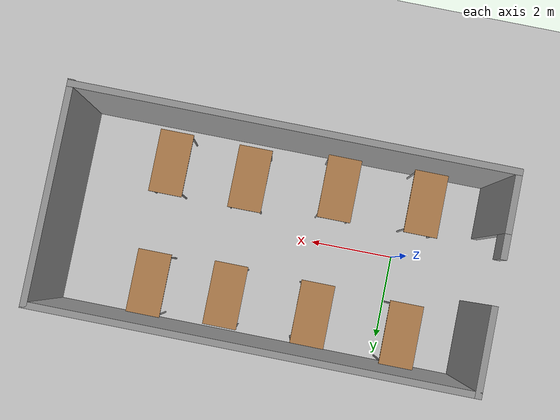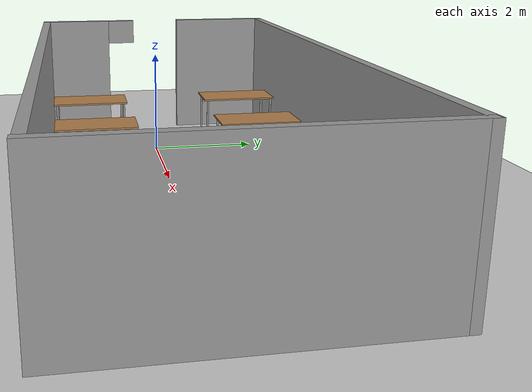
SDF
<sdf version="1.7">
 <world name="default">
  <model name="ground_plane">
   <static>1</static>
   <link name="link">
    <collision name="collision">
     <geometry><plane><normal>0 0 1</normal><size>100 100</size></plane></geometry>
     <surface>
      <contact><collide_bitmask>65535</collide_bitmask></contact>
      <friction><ode><mu>100</mu><mu2>50</mu2></ode></friction>
     </surface>
    </collision>
    <visual name="visual">
     <cast_shadows>0</cast_shadows>
     <geometry><plane><normal>0 0 1</normal><size>100 100</size></plane></geometry>
     <material>
      <script><uri>file://media/materials/scripts/gazebo.material</uri><name>Gazebo/Grey</name></script>
     </material>
    </visual>
   </link>
  </model>
  <gravity>0 0 -9.8</gravity>
  <magnetic_field>6e-06 2.3e-05 -4.2e-05</magnetic_field>
  <atmosphere type="adiabatic"/>
  <physics type="ode">
   <max_step_size>0.001</max_step_size>
   <real_time_factor>1</real_time_factor>
   <real_time_update_rate>1000</real_time_update_rate>
  </physics>
  <scene><ambient>0.4 0.4 0.4 1</ambient><background>0.7 0.7 0.7 1</background><shadows>1</shadows></scene>
  <audio><device>default</device></audio>
  <spherical_coordinates>
   <surface_model>EARTH_WGS84</surface_model>
   <latitude_deg>0</latitude_deg>
   <longitude_deg>0</longitude_deg>
   <elevation>0</elevation>
   <heading_deg>0</heading_deg>
  </spherical_coordinates>
  <light name="sun" type="directional">
   <pose>0.634705 -1.55761 10 0 -0 0</pose>
   <diffuse>0.8 0.8 0.8 1</diffuse>
   <specular>0.2 0.2 0.2 1</specular>
   <attenuation>
    <range>1000</range>
    <constant>0.9</constant>
    <linear>0.01</linear>
    <quadratic>0.001</quadratic>
   </attenuation>
   <direction>-0.5 0.1 -0.9</direction>
   <spot><inner_angle>0</inner_angle><outer_angle>0</outer_angle><falloff>0</falloff></spot>
  </light>
  <model name="vxl">
   <pose>2.9667 0.202921 0 0 -0 0</pose>
   <link name="Wall_17">
    <pose>-4.925 -1.48994 0 0 -0 1.5708</pose>
    <visual name="Wall_17_Visual_0">
     <pose>-0.280644 0 1.25 0 -0 0</pose>
     <geometry><box><size>1.43871 0.15 2.5</size></box></geometry>
     <material>
      <script><uri>file://media/materials/scripts/gazebo.material</uri><name>Gazebo/Grey</name></script>
      <ambient>1 1 1 1</ambient>
     </material>
     <meta><layer>0</layer></meta>
    </visual>
    <collision name="Wall_17_Collision_0">
     <geometry><box><size>1.43871 0.15 2.5</size></box></geometry>
     <pose>-0.280644 0 1.25 0 -0 0</pose>
    </collision>
    <visual name="Wall_17_Visual_1">
     <pose>0.719356 0 2.25 0 -0 0</pose>
     <geometry><box><size>0.561289 0.15 0.5</size></box></geometry>
     <material>
      <script><uri>file://media/materials/scripts/gazebo.material</uri><name>Gazebo/Grey</name></script>
      <ambient>1 1 1 1</ambient>
     </material>
     <meta><layer>0</layer></meta>
    </visual>
    <collision name="Wall_17_Collision_1">
     <geometry><box><size>0.561289 0.15 0.5</size></box></geometry>
     <pose>0.719356 0 2.25 0 -0 0</pose>
    </collision>
   </link>
   <link name="Wall_19">
    <collision name="Wall_19_Collision">
     <geometry><box><size>2 0.15 2.5</size></box></geometry>
     <pose>0 0 1.25 0 -0 0</pose>
    </collision>
    <visual name="Wall_19_Visual">
     <pose>0 0 1.25 0 -0 0</pose>
     <geometry><box><size>2 0.15 2.5</size></box></geometry>
     <material>
      <script><uri>file://media/materials/scripts/gazebo.material</uri><name>Gazebo/Grey</name></script>
      <ambient>1 1 1 1</ambient>
     </material>
     <meta><layer>0</layer></meta>
    </visual>
    <pose>-4.925 1.51006 0 0 -0 -1.5708</pose>
   </link>
   <link name="Wall_6">
    <collision name="Wall_6_Collision">
     <geometry><box><size>10 0.15 2.5</size></box></geometry>
     <pose>0 0 1.25 0 -0 0</pose>
    </collision>
    <visual name="Wall_6_Visual">
     <pose>0 0 1.25 0 -0 0</pose>
     <geometry><box><size>10 0.15 2.5</size></box></geometry>
     <material>
      <script><uri>file://media/materials/scripts/gazebo.material</uri><name>Gazebo/Grey</name></script>
      <ambient>1 1 1 1</ambient>
     </material>
     <meta><layer>0</layer></meta>
    </visual>
    <pose>-0 -2.41494 0 0 -0 0</pose>
   </link>
   <link name="Wall_8">
    <collision name="Wall_8_Collision">
     <geometry><box><size>5 0.15 2.5</size></box></geometry>
     <pose>0 0 1.25 0 -0 0</pose>
    </collision>
    <visual name="Wall_8_Visual">
     <pose>0 0 1.25 0 -0 0</pose>
     <geometry><box><size>5 0.15 2.5</size></box></geometry>
     <material>
      <script><uri>file://media/materials/scripts/gazebo.material</uri><name>Gazebo/Grey</name></script>
      <ambient>1 1 1 1</ambient>
     </material>
     <meta><layer>0</layer></meta>
    </visual>
    <pose>4.925 -0.010057 0 0 -0 1.5708</pose>
   </link>
   <link name="Wall_9">
    <collision name="Wall_9_Collision">
     <geometry><box><size>10 0.15 2.5</size></box></geometry>
     <pose>0 0 1.25 0 -0 0</pose>
    </collision>
    <visual name="Wall_9_Visual">
     <pose>0 0 1.25 0 -0 0</pose>
     <geometry><box><size>10 0.15 2.5</size></box></geometry>
     <material>
      <script><uri>file://media/materials/scripts/gazebo.material</uri><name>Gazebo/Grey</name></script>
      <ambient>1 1 1 1</ambient>
     </material>
     <meta><layer>0</layer></meta>
    </visual>
    <pose>-0 2.43506 0 0 -0 3.14159</pose>
   </link>
   <static>1</static>
  </model>
  <model name="table">
   <static>1</static>
   <link name="link">
    <collision name="surface">
     <pose>0 0 1 0 -0 0</pose>
     <geometry><box><size>1.5 0.8 0.03</size></box></geometry>
     <surface><friction><ode><mu>0.6</mu><mu2>0.6</mu2></ode></friction></surface>
    </collision>
    <visual name="visual1">
     <pose>0 0 1 0 -0 0</pose>
     <geometry><box><size>1.5 0.8 0.03</size></box></geometry>
     <material>
      <script><uri>file://media/materials/scripts/gazebo.material</uri><name>Gazebo/Wood</name></script>
     </material>
    </visual>
    <collision name="front_left_leg">
     <pose>0.68 0.38 0.5 0 -0 0</pose>
     <geometry><cylinder><radius>0.02</radius><length>1</length></cylinder></geometry>
    </collision>
    <visual name="front_left_leg">
     <pose>0.68 0.38 0.5 0 -0 0</pose>
     <geometry><cylinder><radius>0.02</radius><length>1</length></cylinder></geometry>
     <material>
      <script><uri>file://media/materials/scripts/gazebo.material</uri><name>Gazebo/Grey</name></script>
     </material>
    </visual>
    <collision name="front_right_leg">
     <pose>0.68 -0.38 0.5 0 -0 0</pose>
     <geometry><cylinder><radius>0.02</radius><length>1</length></cylinder></geometry>
    </collision>
    <visual name="front_right_leg">
     <pose>0.68 -0.38 0.5 0 -0 0</pose>
     <geometry><cylinder><radius>0.02</radius><length>1</length></cylinder></geometry>
     <material>
      <script><uri>file://media/materials/scripts/gazebo.material</uri><name>Gazebo/Grey</name></script>
     </material>
    </visual>
    <collision name="back_right_leg">
     <pose>-0.68 -0.38 0.5 0 -0 0</pose>
     <geometry><cylinder><radius>0.02</radius><length>1</length></cylinder></geometry>
    </collision>
    <visual name="back_right_leg">
     <pose>-0.68 -0.38 0.5 0 -0 0</pose>
     <geometry><cylinder><radius>0.02</radius><length>1</length></cylinder></geometry>
     <material>
      <script><uri>file://media/materials/scripts/gazebo.material</uri><name>Gazebo/Grey</name></script>
     </material>
    </visual>
    <collision name="back_left_leg">
     <pose>-0.68 0.38 0.5 0 -0 0</pose>
     <geometry><cylinder><radius>0.02</radius><length>1</length></cylinder></geometry>
    </collision>
    <visual name="back_left_leg">
     <pose>-0.68 0.38 0.5 0 -0 0</pose>
     <geometry><cylinder><radius>0.02</radius><length>1</length></cylinder></geometry>
     <material>
      <script><uri>file://media/materials/scripts/gazebo.material</uri><name>Gazebo/Grey</name></script>
     </material>
    </visual>
   </link>
   <pose>-0.41524 1.78939 0 0 -0 1.57</pose>
  </model>
  <model name="table_clone">
   <static>1</static>
   <link name="link">
    <collision name="surface">
     <pose>0 0 1 0 -0 0</pose>
     <geometry><box><size>1.5 0.8 0.03</size></box></geometry>
     <surface><friction><ode><mu>0.6</mu><mu2>0.6</mu2></ode></friction></surface>
    </collision>
    <visual name="visual1">
     <pose>0 0 1 0 -0 0</pose>
     <geometry><box><size>1.5 0.8 0.03</size></box></geometry>
     <material>
      <script><uri>file://media/materials/scripts/gazebo.material</uri><name>Gazebo/Wood</name></script>
     </material>
    </visual>
    <collision name="front_left_leg">
     <pose>0.68 0.38 0.5 0 -0 0</pose>
     <geometry><cylinder><radius>0.02</radius><length>1</length></cylinder></geometry>
    </collision>
    <visual name="front_left_leg">
     <pose>0.68 0.38 0.5 0 -0 0</pose>
     <geometry><cylinder><radius>0.02</radius><length>1</length></cylinder></geometry>
     <material>
      <script><uri>file://media/materials/scripts/gazebo.material</uri><name>Gazebo/Grey</name></script>
     </material>
    </visual>
    <collision name="front_right_leg">
     <pose>0.68 -0.38 0.5 0 -0 0</pose>
     <geometry><cylinder><radius>0.02</radius><length>1</length></cylinder></geometry>
    </collision>
    <visual name="front_right_leg">
     <pose>0.68 -0.38 0.5 0 -0 0</pose>
     <geometry><cylinder><radius>0.02</radius><length>1</length></cylinder></geometry>
     <material>
      <script><uri>file://media/materials/scripts/gazebo.material</uri><name>Gazebo/Grey</name></script>
     </material>
    </visual>
    <collision name="back_right_leg">
     <pose>-0.68 -0.38 0.5 0 -0 0</pose>
     <geometry><cylinder><radius>0.02</radius><length>1</length></cylinder></geometry>
    </collision>
    <visual name="back_right_leg">
     <pose>-0.68 -0.38 0.5 0 -0 0</pose>
     <geometry><cylinder><radius>0.02</radius><length>1</length></cylinder></geometry>
     <material>
      <script><uri>file://media/materials/scripts/gazebo.material</uri><name>Gazebo/Grey</name></script>
     </material>
    </visual>
    <collision name="back_left_leg">
     <pose>-0.68 0.38 0.5 0 -0 0</pose>
     <geometry><cylinder><radius>0.02</radius><length>1</length></cylinder></geometry>
    </collision>
    <visual name="back_left_leg">
     <pose>-0.68 0.38 0.5 0 -0 0</pose>
     <geometry><cylinder><radius>0.02</radius><length>1</length></cylinder></geometry>
     <material>
      <script><uri>file://media/materials/scripts/gazebo.material</uri><name>Gazebo/Grey</name></script>
     </material>
    </visual>
   </link>
   <pose>-0.416608 -1.3492 0 0 -0 1.57</pose>
  </model>
  <model name="table_clone_0">
   <static>1</static>
   <link name="link">
    <collision name="surface">
     <pose>0 0 1 0 -0 0</pose>
     <geometry><box><size>1.5 0.8 0.03</size></box></geometry>
     <surface><friction><ode><mu>0.6</mu><mu2>0.6</mu2></ode></friction></surface>
    </collision>
    <visual name="visual1">
     <pose>0 0 1 0 -0 0</pose>
     <geometry><box><size>1.5 0.8 0.03</size></box></geometry>
     <material>
      <script><uri>file://media/materials/scripts/gazebo.material</uri><name>Gazebo/Wood</name></script>
     </material>
    </visual>
    <collision name="front_left_leg">
     <pose>0.68 0.38 0.5 0 -0 0</pose>
     <geometry><cylinder><radius>0.02</radius><length>1</length></cylinder></geometry>
    </collision>
    <visual name="front_left_leg">
     <pose>0.68 0.38 0.5 0 -0 0</pose>
     <geometry><cylinder><radius>0.02</radius><length>1</length></cylinder></geometry>
     <material>
      <script><uri>file://media/materials/scripts/gazebo.material</uri><name>Gazebo/Grey</name></script>
     </material>
    </visual>
    <collision name="front_right_leg">
     <pose>0.68 -0.38 0.5 0 -0 0</pose>
     <geometry><cylinder><radius>0.02</radius><length>1</length></cylinder></geometry>
    </collision>
    <visual name="front_right_leg">
     <pose>0.68 -0.38 0.5 0 -0 0</pose>
     <geometry><cylinder><radius>0.02</radius><length>1</length></cylinder></geometry>
     <material>
      <script><uri>file://media/materials/scripts/gazebo.material</uri><name>Gazebo/Grey</name></script>
     </material>
    </visual>
    <collision name="back_right_leg">
     <pose>-0.68 -0.38 0.5 0 -0 0</pose>
     <geometry><cylinder><radius>0.02</radius><length>1</length></cylinder></geometry>
    </collision>
    <visual name="back_right_leg">
     <pose>-0.68 -0.38 0.5 0 -0 0</pose>
     <geometry><cylinder><radius>0.02</radius><length>1</length></cylinder></geometry>
     <material>
      <script><uri>file://media/materials/scripts/gazebo.material</uri><name>Gazebo/Grey</name></script>
     </material>
    </visual>
    <collision name="back_left_leg">
     <pose>-0.68 0.38 0.5 0 -0 0</pose>
     <geometry><cylinder><radius>0.02</radius><length>1</length></cylinder></geometry>
    </collision>
    <visual name="back_left_leg">
     <pose>-0.68 0.38 0.5 0 -0 0</pose>
     <geometry><cylinder><radius>0.02</radius><length>1</length></cylinder></geometry>
     <material>
      <script><uri>file://media/materials/scripts/gazebo.material</uri><name>Gazebo/Grey</name></script>
     </material>
    </visual>
   </link>
   <pose>1.71404 1.71954 0 0 -0 1.57</pose>
  </model>
  <model name="table_clone_1">
   <static>1</static>
   <link name="link">
    <collision name="surface">
     <pose>0 0 1 0 -0 0</pose>
     <geometry><box><size>1.5 0.8 0.03</size></box></geometry>
     <surface><friction><ode><mu>0.6</mu><mu2>0.6</mu2></ode></friction></surface>
    </collision>
    <visual name="visual1">
     <pose>0 0 1 0 -0 0</pose>
     <geometry><box><size>1.5 0.8 0.03</size></box></geometry>
     <material>
      <script><uri>file://media/materials/scripts/gazebo.material</uri><name>Gazebo/Wood</name></script>
     </material>
    </visual>
    <collision name="front_left_leg">
     <pose>0.68 0.38 0.5 0 -0 0</pose>
     <geometry><cylinder><radius>0.02</radius><length>1</length></cylinder></geometry>
    </collision>
    <visual name="front_left_leg">
     <pose>0.68 0.38 0.5 0 -0 0</pose>
     <geometry><cylinder><radius>0.02</radius><length>1</length></cylinder></geometry>
     <material>
      <script><uri>file://media/materials/scripts/gazebo.material</uri><name>Gazebo/Grey</name></script>
     </material>
    </visual>
    <collision name="front_right_leg">
     <pose>0.68 -0.38 0.5 0 -0 0</pose>
     <geometry><cylinder><radius>0.02</radius><length>1</length></cylinder></geometry>
    </collision>
    <visual name="front_right_leg">
     <pose>0.68 -0.38 0.5 0 -0 0</pose>
     <geometry><cylinder><radius>0.02</radius><length>1</length></cylinder></geometry>
     <material>
      <script><uri>file://media/materials/scripts/gazebo.material</uri><name>Gazebo/Grey</name></script>
     </material>
    </visual>
    <collision name="back_right_leg">
     <pose>-0.68 -0.38 0.5 0 -0 0</pose>
     <geometry><cylinder><radius>0.02</radius><length>1</length></cylinder></geometry>
    </collision>
    <visual name="back_right_leg">
     <pose>-0.68 -0.38 0.5 0 -0 0</pose>
     <geometry><cylinder><radius>0.02</radius><length>1</length></cylinder></geometry>
     <material>
      <script><uri>file://media/materials/scripts/gazebo.material</uri><name>Gazebo/Grey</name></script>
     </material>
    </visual>
    <collision name="back_left_leg">
     <pose>-0.68 0.38 0.5 0 -0 0</pose>
     <geometry><cylinder><radius>0.02</radius><length>1</length></cylinder></geometry>
    </collision>
    <visual name="back_left_leg">
     <pose>-0.68 0.38 0.5 0 -0 0</pose>
     <geometry><cylinder><radius>0.02</radius><length>1</length></cylinder></geometry>
     <material>
      <script><uri>file://media/materials/scripts/gazebo.material</uri><name>Gazebo/Grey</name></script>
     </material>
    </visual>
   </link>
   <pose>1.65299 -1.30321 0 0 -0 1.57</pose>
  </model>
  <model name="table_clone_2">
   <static>1</static>
   <link name="link">
    <collision name="surface">
     <pose>0 0 1 0 -0 0</pose>
     <geometry><box><size>1.5 0.8 0.03</size></box></geometry>
     <surface><friction><ode><mu>0.6</mu><mu2>0.6</mu2></ode></friction></surface>
    </collision>
    <visual name="visual1">
     <pose>0 0 1 0 -0 0</pose>
     <geometry><box><size>1.5 0.8 0.03</size></box></geometry>
     <material>
      <script><uri>file://media/materials/scripts/gazebo.material</uri><name>Gazebo/Wood</name></script>
     </material>
    </visual>
    <collision name="front_left_leg">
     <pose>0.68 0.38 0.5 0 -0 0</pose>
     <geometry><cylinder><radius>0.02</radius><length>1</length></cylinder></geometry>
    </collision>
    <visual name="front_left_leg">
     <pose>0.68 0.38 0.5 0 -0 0</pose>
     <geometry><cylinder><radius>0.02</radius><length>1</length></cylinder></geometry>
     <material>
      <script><uri>file://media/materials/scripts/gazebo.material</uri><name>Gazebo/Grey</name></script>
     </material>
    </visual>
    <collision name="front_right_leg">
     <pose>0.68 -0.38 0.5 0 -0 0</pose>
     <geometry><cylinder><radius>0.02</radius><length>1</length></cylinder></geometry>
    </collision>
    <visual name="front_right_leg">
     <pose>0.68 -0.38 0.5 0 -0 0</pose>
     <geometry><cylinder><radius>0.02</radius><length>1</length></cylinder></geometry>
     <material>
      <script><uri>file://media/materials/scripts/gazebo.material</uri><name>Gazebo/Grey</name></script>
     </material>
    </visual>
    <collision name="back_right_leg">
     <pose>-0.68 -0.38 0.5 0 -0 0</pose>
     <geometry><cylinder><radius>0.02</radius><length>1</length></cylinder></geometry>
    </collision>
    <visual name="back_right_leg">
     <pose>-0.68 -0.38 0.5 0 -0 0</pose>
     <geometry><cylinder><radius>0.02</radius><length>1</length></cylinder></geometry>
     <material>
      <script><uri>file://media/materials/scripts/gazebo.material</uri><name>Gazebo/Grey</name></script>
     </material>
    </visual>
    <collision name="back_left_leg">
     <pose>-0.68 0.38 0.5 0 -0 0</pose>
     <geometry><cylinder><radius>0.02</radius><length>1</length></cylinder></geometry>
    </collision>
    <visual name="back_left_leg">
     <pose>-0.68 0.38 0.5 0 -0 0</pose>
     <geometry><cylinder><radius>0.02</radius><length>1</length></cylinder></geometry>
     <material>
      <script><uri>file://media/materials/scripts/gazebo.material</uri><name>Gazebo/Grey</name></script>
     </material>
    </visual>
   </link>
   <pose>3.80069 1.67949 0 0 -0 1.57</pose>
  </model>
  <model name="table_clone_3">
   <static>1</static>
   <link name="link">
    <collision name="surface">
     <pose>0 0 1 0 -0 0</pose>
     <geometry><box><size>1.5 0.8 0.03</size></box></geometry>
     <surface><friction><ode><mu>0.6</mu><mu2>0.6</mu2></ode></friction></surface>
    </collision>
    <visual name="visual1">
     <pose>0 0 1 0 -0 0</pose>
     <geometry><box><size>1.5 0.8 0.03</size></box></geometry>
     <material>
      <script><uri>file://media/materials/scripts/gazebo.material</uri><name>Gazebo/Wood</name></script>
     </material>
    </visual>
    <collision name="front_left_leg">
     <pose>0.68 0.38 0.5 0 -0 0</pose>
     <geometry><cylinder><radius>0.02</radius><length>1</length></cylinder></geometry>
    </collision>
    <visual name="front_left_leg">
     <pose>0.68 0.38 0.5 0 -0 0</pose>
     <geometry><cylinder><radius>0.02</radius><length>1</length></cylinder></geometry>
     <material>
      <script><uri>file://media/materials/scripts/gazebo.material</uri><name>Gazebo/Grey</name></script>
     </material>
    </visual>
    <collision name="front_right_leg">
     <pose>0.68 -0.38 0.5 0 -0 0</pose>
     <geometry><cylinder><radius>0.02</radius><length>1</length></cylinder></geometry>
    </collision>
    <visual name="front_right_leg">
     <pose>0.68 -0.38 0.5 0 -0 0</pose>
     <geometry><cylinder><radius>0.02</radius><length>1</length></cylinder></geometry>
     <material>
      <script><uri>file://media/materials/scripts/gazebo.material</uri><name>Gazebo/Grey</name></script>
     </material>
    </visual>
    <collision name="back_right_leg">
     <pose>-0.68 -0.38 0.5 0 -0 0</pose>
     <geometry><cylinder><radius>0.02</radius><length>1</length></cylinder></geometry>
    </collision>
    <visual name="back_right_leg">
     <pose>-0.68 -0.38 0.5 0 -0 0</pose>
     <geometry><cylinder><radius>0.02</radius><length>1</length></cylinder></geometry>
     <material>
      <script><uri>file://media/materials/scripts/gazebo.material</uri><name>Gazebo/Grey</name></script>
     </material>
    </visual>
    <collision name="back_left_leg">
     <pose>-0.68 0.38 0.5 0 -0 0</pose>
     <geometry><cylinder><radius>0.02</radius><length>1</length></cylinder></geometry>
    </collision>
    <visual name="back_left_leg">
     <pose>-0.68 0.38 0.5 0 -0 0</pose>
     <geometry><cylinder><radius>0.02</radius><length>1</length></cylinder></geometry>
     <material>
      <script><uri>file://media/materials/scripts/gazebo.material</uri><name>Gazebo/Grey</name></script>
     </material>
    </visual>
   </link>
   <pose>3.7701 -1.12553 0 0 -0 1.57</pose>
  </model>
  <model name="table_clone_4">
   <static>1</static>
   <link name="link">
    <collision name="surface">
     <pose>0 0 1 0 -0 0</pose>
     <geometry><box><size>1.5 0.8 0.03</size></box></geometry>
     <surface><friction><ode><mu>0.6</mu><mu2>0.6</mu2></ode></friction></surface>
    </collision>
    <visual name="visual1">
     <pose>0 0 1 0 -0 0</pose>
     <geometry><box><size>1.5 0.8 0.03</size></box></geometry>
     <material>
      <script><uri>file://media/materials/scripts/gazebo.material</uri><name>Gazebo/Wood</name></script>
     </material>
    </visual>
    <collision name="front_left_leg">
     <pose>0.68 0.38 0.5 0 -0 0</pose>
     <geometry><cylinder><radius>0.02</radius><length>1</length></cylinder></geometry>
    </collision>
    <visual name="front_left_leg">
     <pose>0.68 0.38 0.5 0 -0 0</pose>
     <geometry><cylinder><radius>0.02</radius><length>1</length></cylinder></geometry>
     <material>
      <script><uri>file://media/materials/scripts/gazebo.material</uri><name>Gazebo/Grey</name></script>
     </material>
    </visual>
    <collision name="front_right_leg">
     <pose>0.68 -0.38 0.5 0 -0 0</pose>
     <geometry><cylinder><radius>0.02</radius><length>1</length></cylinder></geometry>
    </collision>
    <visual name="front_right_leg">
     <pose>0.68 -0.38 0.5 0 -0 0</pose>
     <geometry><cylinder><radius>0.02</radius><length>1</length></cylinder></geometry>
     <material>
      <script><uri>file://media/materials/scripts/gazebo.material</uri><name>Gazebo/Grey</name></script>
     </material>
    </visual>
    <collision name="back_right_leg">
     <pose>-0.68 -0.38 0.5 0 -0 0</pose>
     <geometry><cylinder><radius>0.02</radius><length>1</length></cylinder></geometry>
    </collision>
    <visual name="back_right_leg">
     <pose>-0.68 -0.38 0.5 0 -0 0</pose>
     <geometry><cylinder><radius>0.02</radius><length>1</length></cylinder></geometry>
     <material>
      <script><uri>file://media/materials/scripts/gazebo.material</uri><name>Gazebo/Grey</name></script>
     </material>
    </visual>
    <collision name="back_left_leg">
     <pose>-0.68 0.38 0.5 0 -0 0</pose>
     <geometry><cylinder><radius>0.02</radius><length>1</length></cylinder></geometry>
    </collision>
    <visual name="back_left_leg">
     <pose>-0.68 0.38 0.5 0 -0 0</pose>
     <geometry><cylinder><radius>0.02</radius><length>1</length></cylinder></geometry>
     <material>
      <script><uri>file://media/materials/scripts/gazebo.material</uri><name>Gazebo/Grey</name></script>
     </material>
    </visual>
   </link>
   <pose>5.61938 1.74365 0 0 -0 1.57</pose>
  </model>
  <model name="table_clone_5">
   <static>1</static>
   <link name="link">
    <collision name="surface">
     <pose>0 0 1 0 -0 0</pose>
     <geometry><box><size>1.5 0.8 0.03</size></box></geometry>
     <surface><friction><ode><mu>0.6</mu><mu2>0.6</mu2></ode></friction></surface>
    </collision>
    <visual name="visual1">
     <pose>0 0 1 0 -0 0</pose>
     <geometry><box><size>1.5 0.8 0.03</size></box></geometry>
     <material>
      <script><uri>file://media/materials/scripts/gazebo.material</uri><name>Gazebo/Wood</name></script>
     </material>
    </visual>
    <collision name="front_left_leg">
     <pose>0.68 0.38 0.5 0 -0 0</pose>
     <geometry><cylinder><radius>0.02</radius><length>1</length></cylinder></geometry>
    </collision>
    <visual name="front_left_leg">
     <pose>0.68 0.38 0.5 0 -0 0</pose>
     <geometry><cylinder><radius>0.02</radius><length>1</length></cylinder></geometry>
     <material>
      <script><uri>file://media/materials/scripts/gazebo.material</uri><name>Gazebo/Grey</name></script>
     </material>
    </visual>
    <collision name="front_right_leg">
     <pose>0.68 -0.38 0.5 0 -0 0</pose>
     <geometry><cylinder><radius>0.02</radius><length>1</length></cylinder></geometry>
    </collision>
    <visual name="front_right_leg">
     <pose>0.68 -0.38 0.5 0 -0 0</pose>
     <geometry><cylinder><radius>0.02</radius><length>1</length></cylinder></geometry>
     <material>
      <script><uri>file://media/materials/scripts/gazebo.material</uri><name>Gazebo/Grey</name></script>
     </material>
    </visual>
    <collision name="back_right_leg">
     <pose>-0.68 -0.38 0.5 0 -0 0</pose>
     <geometry><cylinder><radius>0.02</radius><length>1</length></cylinder></geometry>
    </collision>
    <visual name="back_right_leg">
     <pose>-0.68 -0.38 0.5 0 -0 0</pose>
     <geometry><cylinder><radius>0.02</radius><length>1</length></cylinder></geometry>
     <material>
      <script><uri>file://media/materials/scripts/gazebo.material</uri><name>Gazebo/Grey</name></script>
     </material>
    </visual>
    <collision name="back_left_leg">
     <pose>-0.68 0.38 0.5 0 -0 0</pose>
     <geometry><cylinder><radius>0.02</radius><length>1</length></cylinder></geometry>
    </collision>
    <visual name="back_left_leg">
     <pose>-0.68 0.38 0.5 0 -0 0</pose>
     <geometry><cylinder><radius>0.02</radius><length>1</length></cylinder></geometry>
     <material>
      <script><uri>file://media/materials/scripts/gazebo.material</uri><name>Gazebo/Grey</name></script>
     </material>
    </visual>
   </link>
   <pose>5.67195 -1.13212 0 0 -0 1.57</pose>
  </model>
 </world>
</sdf>
